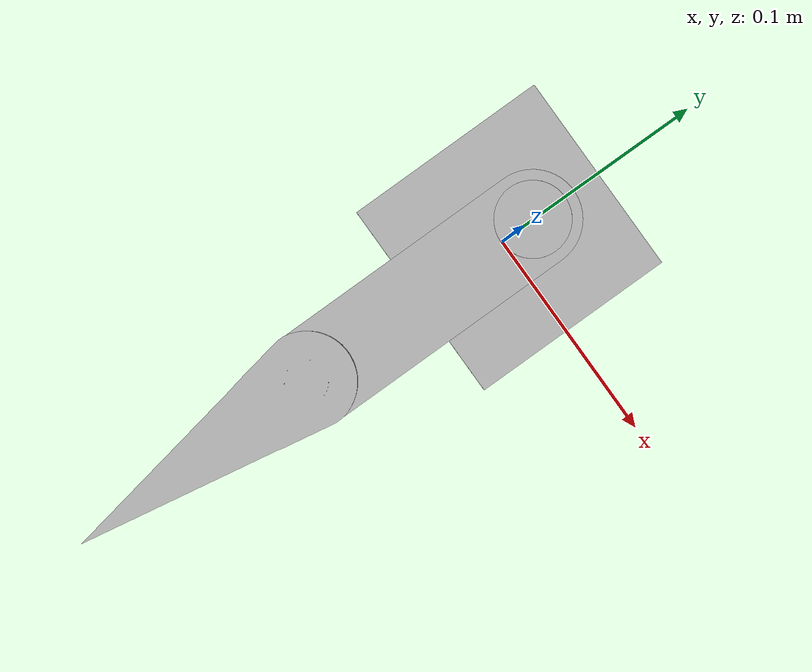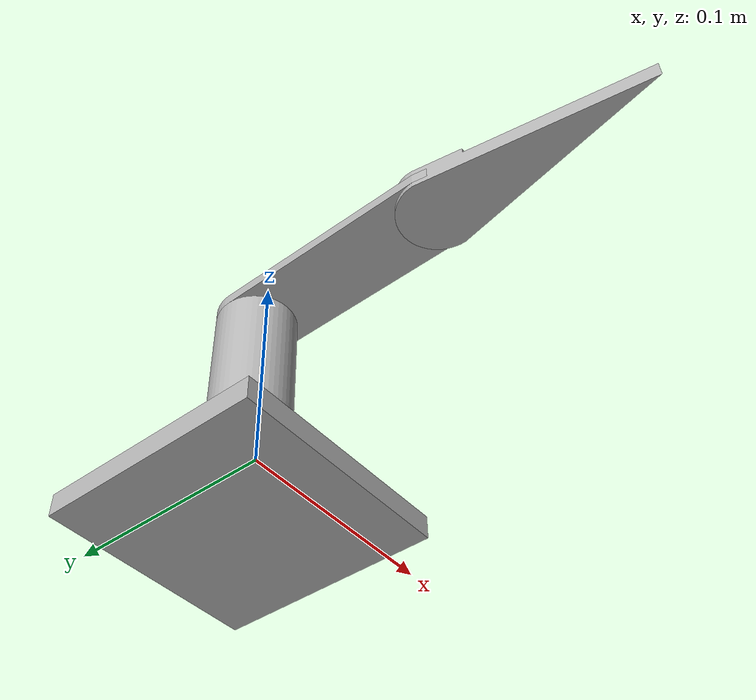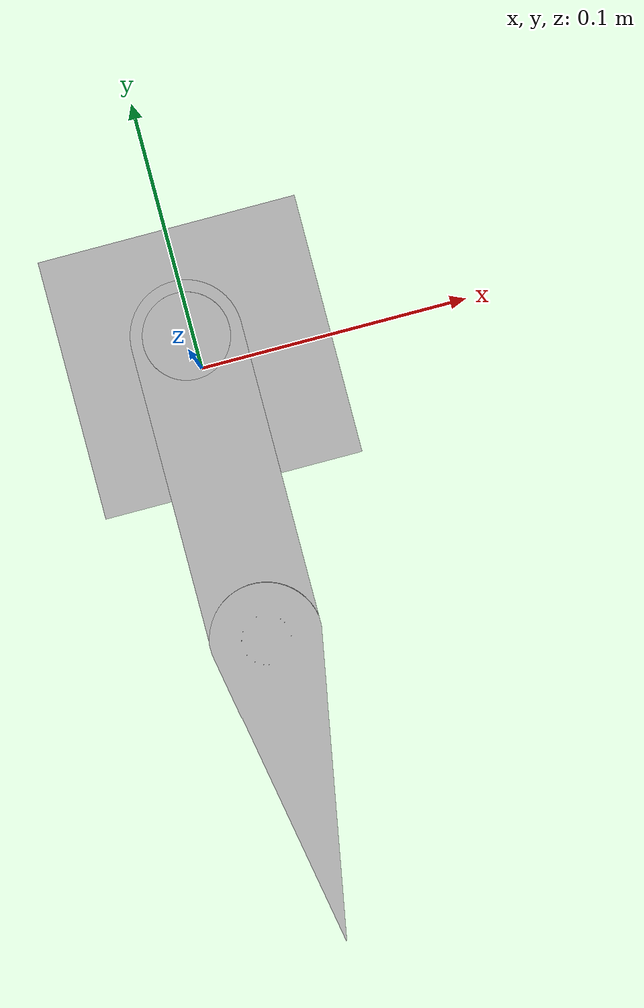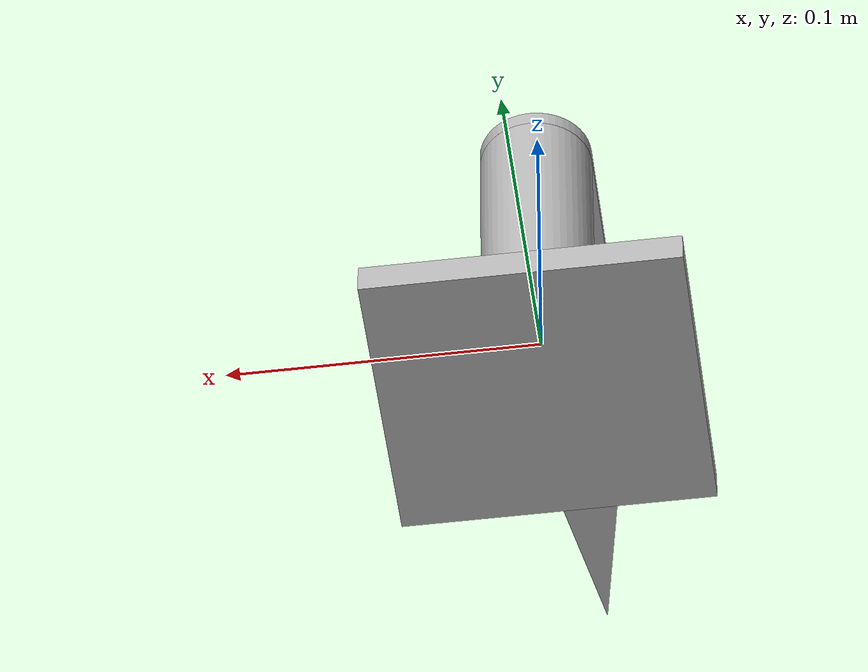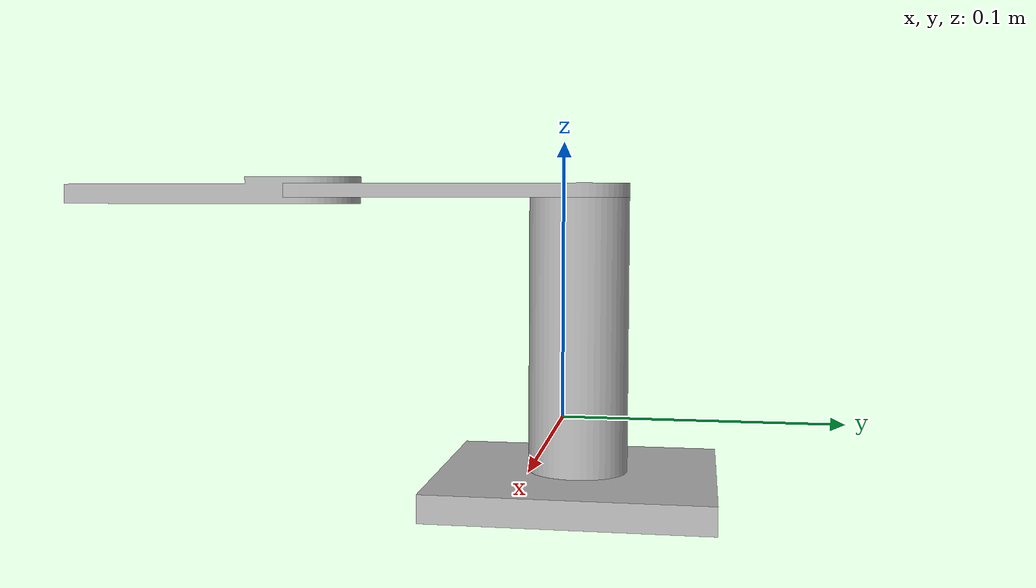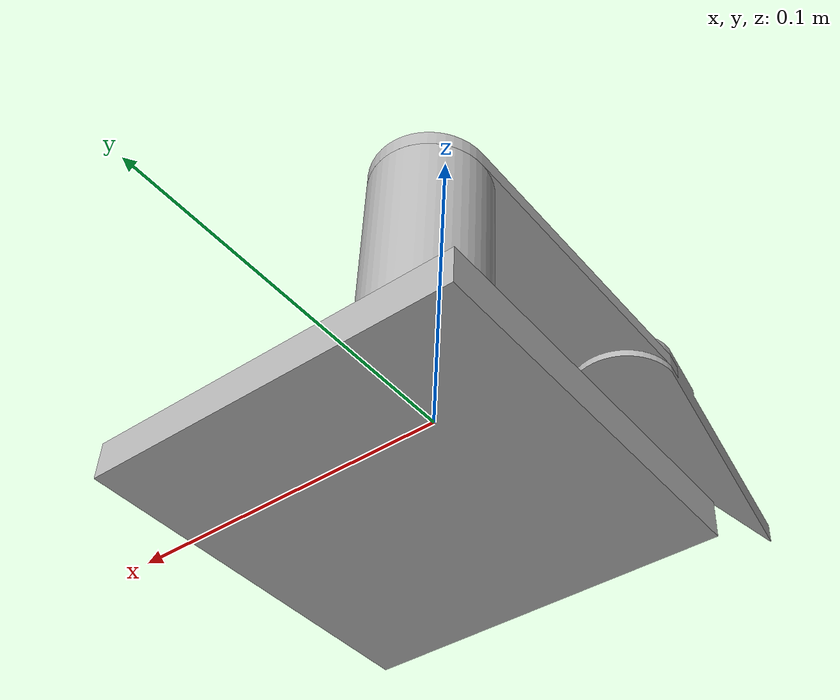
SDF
<?xml version="1.0" ?>
<sdf version="1.6">
	<model name="test_robot">
		<link name="base_link">
			<pose frame="">0.0 0.005609474436197177 -0.01960947443619716 0.0 -0.0 0.0</pose>
			<inertial>
				<pose frame="">0.0 0.0 0.0 0 0 0</pose>
				<mass>0.8836460093227236</mass>
				<inertia>
					<ixx>0.001190738943138962</ixx>
					<ixy>8.183188171528854e-16</ixy>
					<ixz>0.00011645046673107727</ixz>
					<iyy>0.0011629339593055119</iyy>
					<iyz>-2.1314993325916023e-15</iyz>
					<izz>0.0013460029187360508</izz>
				</inertia>
			</inertial>
			<collision name="base_link_collision">
				<geometry>
					<mesh>
						<uri>model://test_robot/meshes/CAD/base_link.stl</uri>
						<scale>0.001 0.001 0.001</scale>
					</mesh>
				</geometry>
			</collision>
			<visual name="base_link_visual">
				<geometry>
					<mesh>
						<uri>model://test_robot/meshes/CAD/base_link.stl</uri>
						<scale>0.001 0.001 0.001</scale>
					</mesh>
				</geometry>
			</visual>
		</link>
		<link name="link_1">
			<pose frame="">0.0 0.005609474436197114 0.08539052556380285 0.0 -0.0 0.0</pose>
			<inertial>
				<pose frame="">0.0 0.0 0.0 0 0 0</pose>
				<mass>0.35759178379484685</mass>
				<inertia>
					<ixx>0.0009347744519547174</ixx>
					<ixy>-8.358704954858354e-15</ixy>
					<ixz>-7.548591211405358e-05</ixz>
					<iyy>0.0009235223863199722</iyy>
					<iyz>-4.145617868323015e-14</iyz>
					<izz>9.710490526590238e-05</izz>
				</inertia>
			</inertial>
			<collision name="link_1_collision">
				<geometry>
					<mesh>
						<uri>model://test_robot/meshes/CAD/link_1.stl</uri>
						<scale>0.001 0.001 0.001</scale>
					</mesh>
				</geometry>
			</collision>
			<visual name="link_1_visual">
				<geometry>
					<mesh>
						<uri>model://test_robot/meshes/CAD/link_1.stl</uri>
						<scale>0.001 0.001 0.001</scale>
					</mesh>
				</geometry>
			</visual>
		</link>
		<link name="link_2">
			<pose frame="">0.0 -0.09439052556380297 0.08539052556380279 0.0 -0.0 0.0</pose>
			<inertial>
				<pose frame="">0.0 0.0 0.0 0 0 0</pose>
				<mass>0.2980192754801843</mass>
				<inertia>
					<ixx>0.0031206814603347197</ixx>
					<ixy>1.4492541655641843e-15</ixy>
					<ixz>0.001248431371227071</ixz>
					<iyy>0.0020826640636364305</iyy>
					<iyz>2.1587817278234665e-15</iyz>
					<izz>0.0011068187195061008</izz>
				</inertia>
			</inertial>
			<collision name="link_2_collision">
				<geometry>
					<mesh>
						<uri>model://test_robot/meshes/CAD/link_2.stl</uri>
						<scale>0.001 0.001 0.001</scale>
					</mesh>
				</geometry>
			</collision>
			<visual name="link_2_visual">
				<geometry>
					<mesh>
						<uri>model://test_robot/meshes/CAD/link_2.stl</uri>
						<scale>0.001 0.001 0.001</scale>
					</mesh>
				</geometry>
			</visual>
		</link>
		<link name="link_3">
			<pose frame="">-3.7747582837255325e-17 -0.19439052556380298 0.0853905255638028 0.0 -0.0 0.0</pose>
			<inertial>
				<pose frame="">0.0 0.0 0.0 0 0 0</pose>
				<mass>0.24046573204213045</mass>
				<inertia>
					<ixx>0.005401136615889047</ixx>
					<ixy>-7.32048066367379e-08</ixy>
					<ixz>0.002417430698161075</ixz>
					<iyy>0.0016417934060639504</iyy>
					<iyz>5.4602878175571166e-08</iyz>
					<izz>0.0037874184482716597</izz>
				</inertia>
			</inertial>
			<collision name="link_3_collision">
				<geometry>
					<mesh>
						<uri>model://test_robot/meshes/CAD/link_3.stl</uri>
						<scale>0.001 0.001 0.001</scale>
					</mesh>
				</geometry>
			</collision>
			<visual name="link_3_visual">
				<geometry>
					<mesh>
						<uri>model://test_robot/meshes/CAD/link_3.stl</uri>
						<scale>0.001 0.001 0.001</scale>
					</mesh>
				</geometry>
			</visual>
		</link>
		<joint name="joint_1" type="revolute">
			<parent>base_link</parent>
			<child>link_1</child>
			<pose frame="">0.0 6.217248937900877e-17 -0.10499999999999998 0 0 0</pose>
			<axis>
				<xyz>0.0 -5.967448757360212e-16 0.9999999999999998</xyz>
				<limit>
					<lower>-3.141592653589793</lower>
					<upper>3.141592653589793</upper>
				</limit>
				<use_parent_model_frame>0</use_parent_model_frame>
			</axis>
		</joint>
		<joint name="joint_2" type="revolute">
			<parent>link_1</parent>
			<child>link_2</child>
			<pose frame="">0.0 0.10000000000000009 5.329070518200751e-17 0 0 0</pose>
			<axis>
				<xyz>0.0 -5.96744875736021e-16 1.0</xyz>
				<limit>
					<lower>-3.141592653589793</lower>
					<upper>3.141592653589793</upper>
				</limit>
				<use_parent_model_frame>0</use_parent_model_frame>
			</axis>
		</joint>
		<joint name="joint_3" type="revolute">
			<parent>link_2</parent>
			<child>link_3</child>
			<pose frame="">3.7747582837255325e-17 0.10000000000000007 -1.7763568394002505e-17 0 0 0</pose>
			<axis>
				<xyz>0.0 5.96744875736021e-16 -1.0</xyz>
				<limit>
					<lower>-3.141592653589793</lower>
					<upper>3.141592653589793</upper>
				</limit>
				<use_parent_model_frame>0</use_parent_model_frame>
			</axis>
		</joint>
		<plugin filename="libmyomuscle_plugin.so" name="myomuscle_plugin"/>
	</model>
</sdf>
